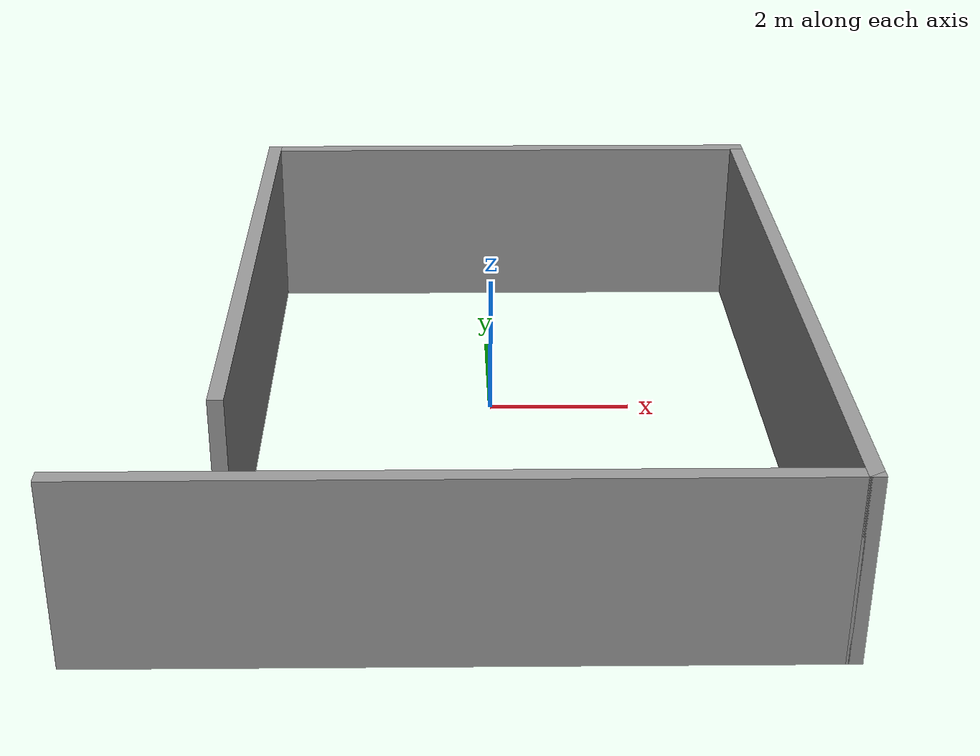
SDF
<?xml version='1.0'?>
<sdf version='1.4'>
  <model name='NASlab'>
    <link name='Wall_0'>
      <collision name='Wall_0_Collision'>
        <geometry>
          <box>
            <size>9.2 0.2 2.5</size>
          </box>
        </geometry>
        <pose>0 0 1.25 0 -0 0</pose>
      </collision>
      <visual name='Wall_0_Visual'>
        <pose>0 0 1.25 0 -0 0</pose>
        <geometry>
          <box>
            <size>9.2 0.2 2.5</size>
          </box>
        </geometry>
        <material>
          <script>
            <uri>file://media/materials/scripts/gazebo.material</uri>
            <name>Gazebo/Grey</name>
          </script>
        </material>
      </visual>
      <velocity_decay>
        <linear>0</linear>
        <angular>0</angular>
      </velocity_decay>
      <pose>-0.5 -6 0 0 -0 0</pose>
    </link>
    <link name='Wall_1'>
      <collision name='Wall_1_Collision'>
        <geometry>
          <box>
            <size>10.2 0.2 2.5</size>
          </box>
        </geometry>
        <pose>0 0 1.25 0 -0 0</pose>
      </collision>
      <visual name='Wall_1_Visual'>
        <pose>0 0 1.25 0 -0 0</pose>
        <geometry>
          <box>
            <size>10.2 0.2 2.5</size>
          </box>
        </geometry>
        <material>
          <script>
            <uri>file://media/materials/scripts/gazebo.material</uri>
            <name>Gazebo/Grey</name>
          </script>
        </material>
      </visual>
      <velocity_decay>
        <linear>0</linear>
        <angular>0</angular>
      </velocity_decay>
      <pose>4 -1 0 0 -0 1.5708</pose>
    </link>
    <link name='Wall_2'>
      <collision name='Wall_2_Collision'>
        <geometry>
          <box>
            <size>7.542 0.2 2.5</size>
          </box>
        </geometry>
        <pose>0 0 1.25 0 -0 0</pose>
      </collision>
      <visual name='Wall_2_Visual'>
        <pose>0 0 1.25 0 -0 0</pose>
        <geometry>
          <box>
            <size>7.542 0.2 2.5</size>
          </box>
        </geometry>
        <material>
          <script>
            <uri>file://media/materials/scripts/gazebo.material</uri>
            <name>Gazebo/Grey</name>
          </script>
        </material>
      </visual>
      <velocity_decay>
        <linear>0</linear>
        <angular>0</angular>
      </velocity_decay>
      <pose>0.329 4 0 0 -0 3.14159</pose>
    </link>
    <link name='Wall_3'>
      <collision name='Wall_3_Collision'>
        <geometry>
          <box>
            <size>8.41063 0.2 2.5</size>
          </box>
        </geometry>
        <pose>0 0 1.25 0 -0 0</pose>
      </collision>
      <visual name='Wall_3_Visual'>
        <pose>0 0 1.25 0 -0 0</pose>
        <geometry>
          <box>
            <size>8.41063 0.2 2.5</size>
          </box>
        </geometry>
        <material>
          <script>
            <uri>file://media/materials/scripts/gazebo.material</uri>
            <name>Gazebo/Grey</name>
          </script>
        </material>
      </visual>
      <velocity_decay>
        <linear>0</linear>
        <angular>0</angular>
      </velocity_decay>
      <pose>-3.34203 -0.105315 0 0 0 -1.5708</pose>
    </link>
    <static>1</static>
  </model>
</sdf>
